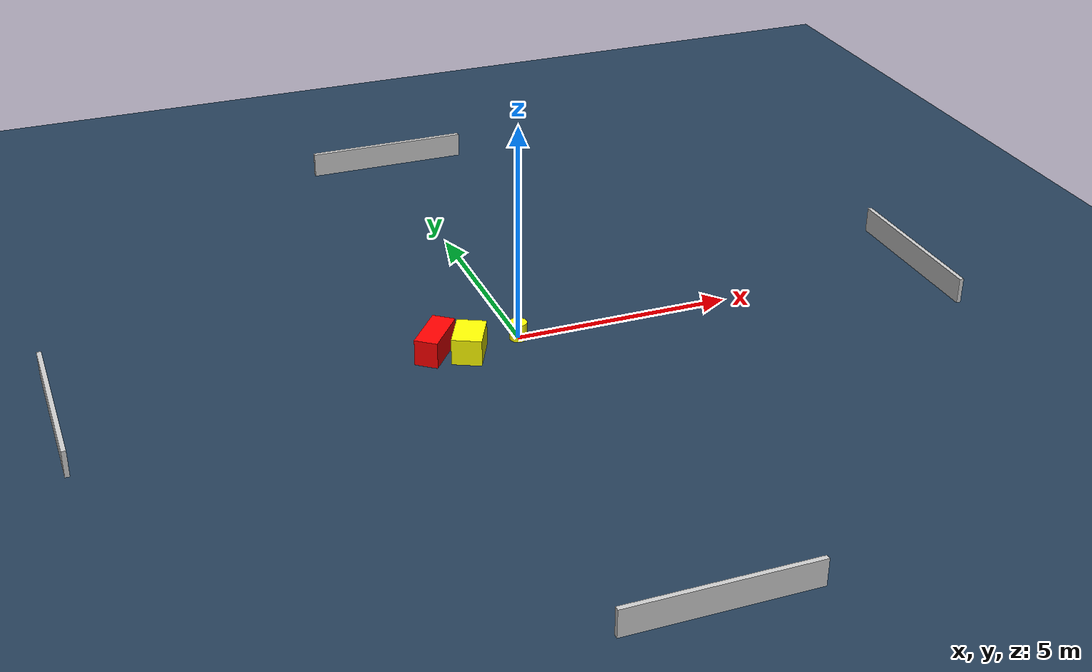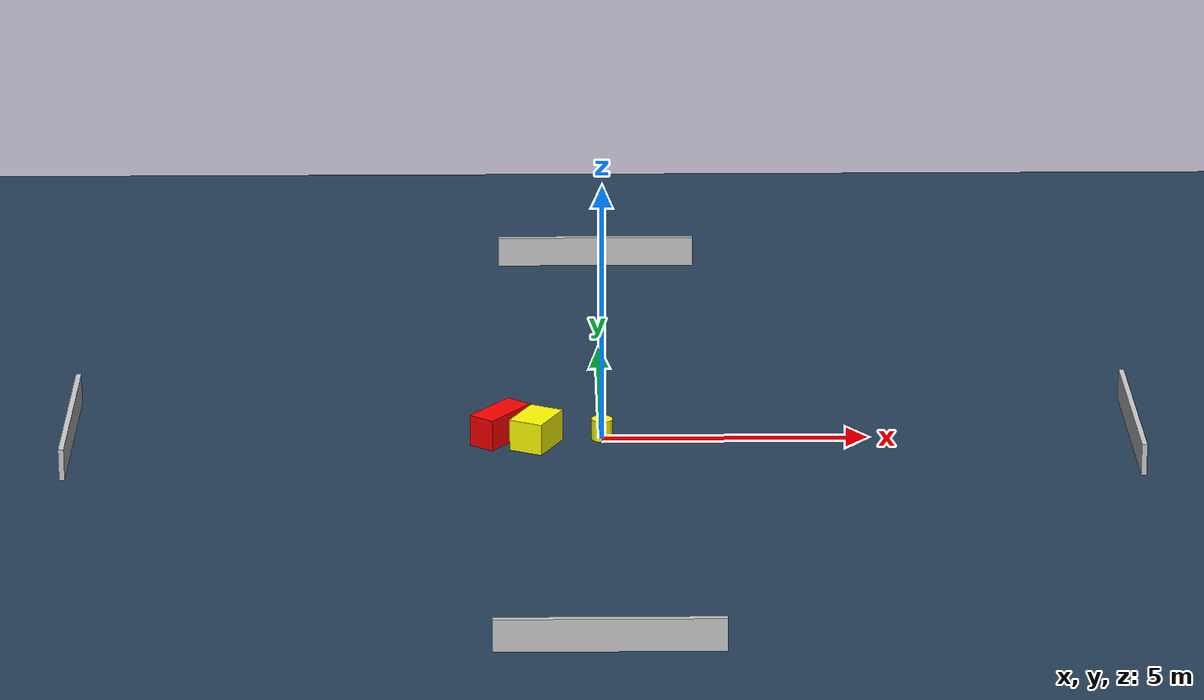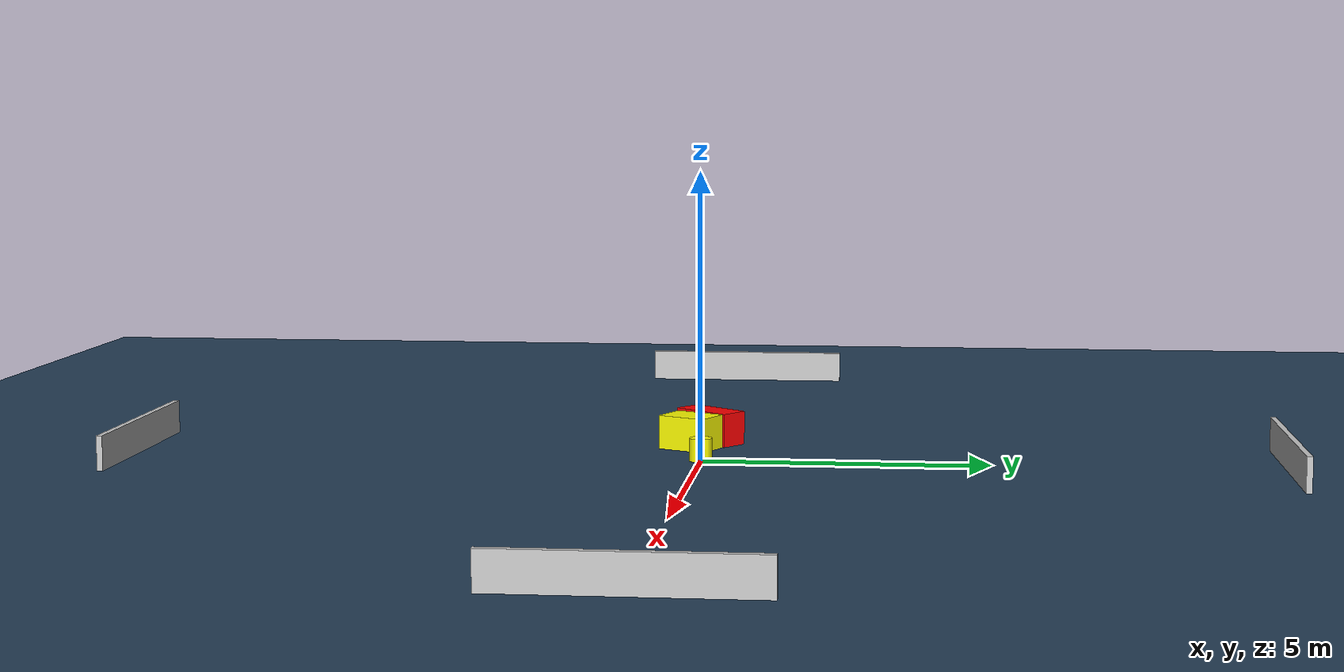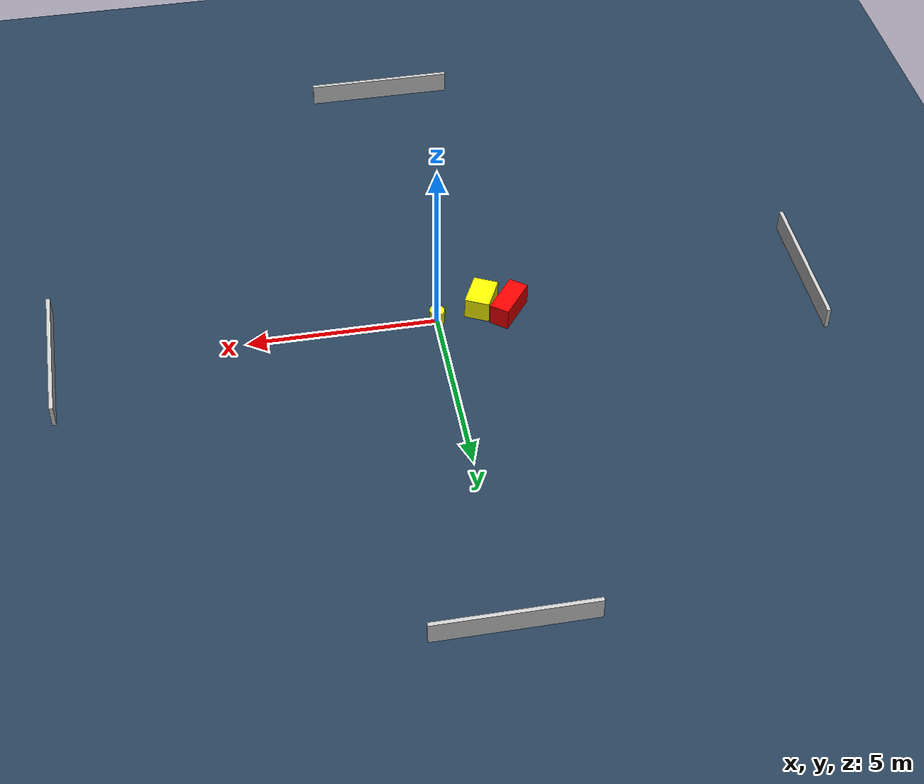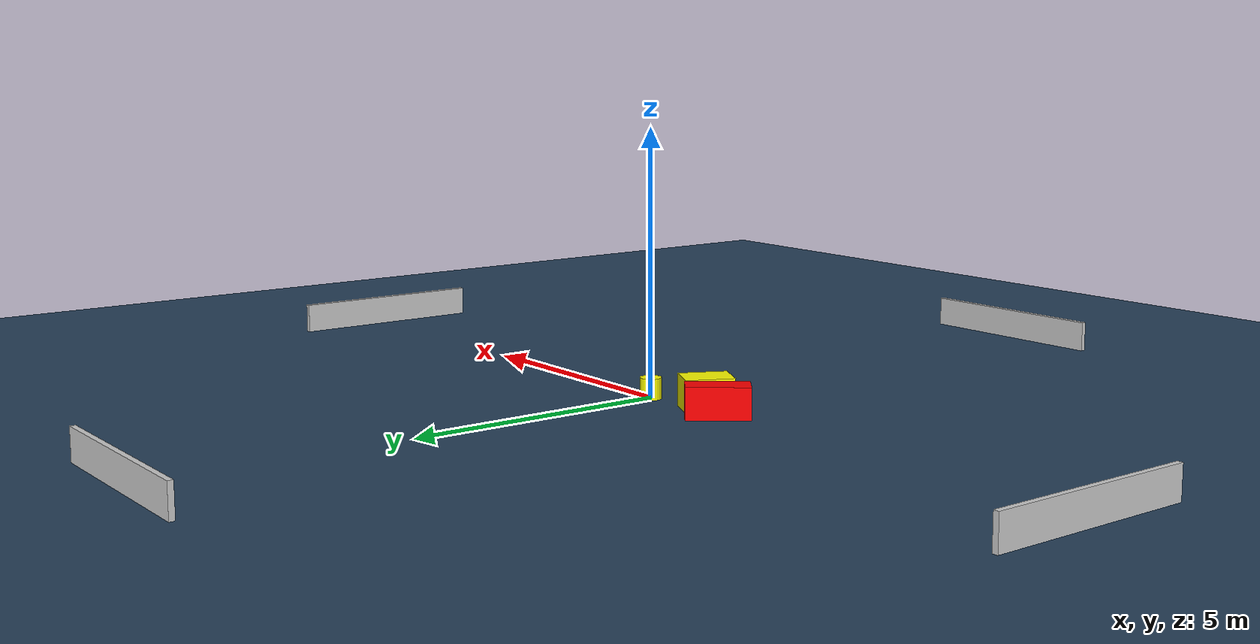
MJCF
<?xml version="1.0" ?>
<mujoco model="generated_environment">
  <option timestep="0.01" integrator="RK4" cone="elliptic"/>
  <default>
    <geom density="1"/>
  </default>
  <asset>
    <texture builtin="gradient" height="3072" name="skybox" rgb1="0.3 0.5 0.7" rgb2="0 0 0" type="skybox" width="512"/>
    <texture builtin="checker" height="300" name="groundplane" rgb1="0.2 0.3 0.4" rgb2="0.1 0.2 0.3" type="2d" width="300"/>
    <material name="groundplane" reflectance="0.2" texrepeat="5 5" texture="groundplane"/>
  </asset>
  <worldbody>
    <light dir="0 0 -1" directional="true" pos="0 0 1.5"/>
    <geom condim="3" friction="0.5 0.005 0.001" material="groundplane" name="floor" pos="0 0 0" size="0 0 0.05" type="plane"/>
    <body name="walls">
      <geom name="wall_1" condim="4" pos="-10.0 0.0 0.3" rgba="0.800000011920929 0.800000011920929 0.800000011920929 1.0" size="0.05 2.0 0.3" type="box"/>
      <geom name="wall_2" condim="4" pos="10.0 0.0 0.3" rgba="0.800000011920929 0.800000011920929 0.800000011920929 1.0" size="0.05 2.0 0.3" type="box"/>
      <geom name="wall_3" condim="4" pos="0.0 -10.0 0.3" rgba="0.800000011920929 0.800000011920929 0.800000011920929 1.0" size="2.0 0.05 0.3" type="box"/>
      <geom name="wall_4" condim="4" pos="0.0 10.0 0.3" rgba="0.800000011920929 0.800000011920929 0.800000011920929 1.0" size="2.0 0.05 0.3" type="box"/>
    </body>
    <body name="robot">
      <joint name="joint_x" type="slide" pos="0 0 0" axis="1 0 0"/>
      <joint name="joint_y" type="slide" pos="0 0 0" axis="0 1 0"/>
      <geom name="robot" type="cylinder" pos="0.0 0.0 0.2" size="0.2 0.2 0.0" mass="5.0" friction="1.0 0.005 0.0001" condim="4" rgba="1.0 1.0 0.0 1.0"/>
    </body>
    <body name="obstacle_1_movable">
      <geom name="obstacle_1_movable" condim="4" pos="-1.23998258419949 -0.3046966704545369 0.3" euler="0 0 63.747116448390365" friction="0.0 0.005 0.001" rgba="1.0 1.0 0.0 1.0" size="0.45953559394349697 0.3301968508993418 0.3" type="box" mass="0.1"/>
      <joint type="free"/>
    </body>
    <body name="obstacle_2_static">
      <geom name="obstacle_2_static" condim="4" pos="-1.91510869097166 -0.008891077699163101 0.3" euler="0 0 52.15922924262098" friction="0.0 0.005 0.001" rgba="1.0 0.0 0.0 1.0" size="0.5836600221173954 0.2624010272822001 0.3" type="box"/>
    </body>
  </worldbody>
  <actuator>
    <motor name="actuator_x" joint="joint_x" gear="1" ctrlrange="-1 1"/>
    <motor name="actuator_y" joint="joint_y" gear="1" ctrlrange="-1 1"/>
  </actuator>
</mujoco>
